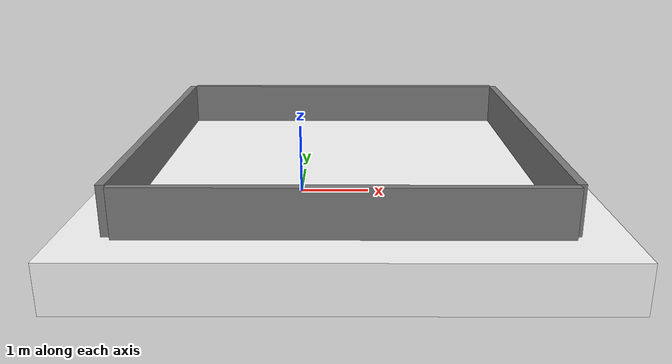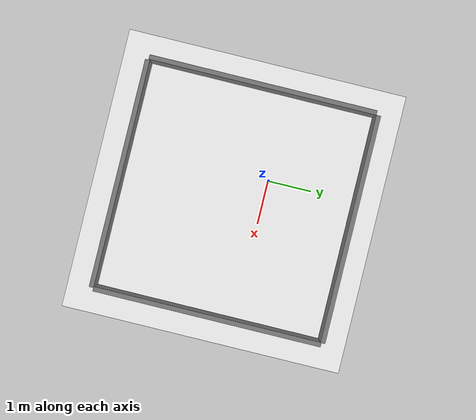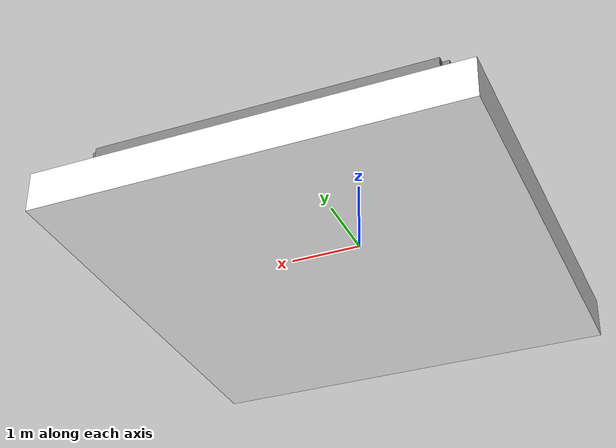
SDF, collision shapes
<?xml version='1.0'?>

<sdf version="1.6">
  <model name="arene">
    <static>true</static>
        <!-- base Link -->
    <link name="base_link">
      <pose>-2.5 2.5 0.0 1.57 0 0</pose>
      <visual name="base_visual">
        <geometry>
          <mesh>
            <uri>model://arene/meshes/arene_base.STL</uri>
            <scale> 0.001 0.001 0.001 </scale>
          </mesh>
        </geometry>
        <material>
          <ambient>0.9 0.9 0.9 1</ambient>
	  <diffuse>1 1 1 1</diffuse>
	  <specular>0.5 0.5 0.5 1</specular>
        </material>
      </visual>
      <collision name="base_collision">
      <pose>3.13 0.3 3.13 1.57 0 0</pose>
        <geometry>
          <box>
            <size>6.25 6.25 0.6</size>
          </box>
        </geometry>
      </collision>
      <inertial>
        <mass>100.0</mass>
        <inertia>
            <ixx>0.0</ixx>
            <ixy>0.0</ixy>
            <ixz>0.0</ixz>
            <iyy>0.0</iyy>
            <iyz>0.0</iyz>
            <izz>0.0</izz>
        </inertia>
      </inertial>
    </link>

    <!-- Frame Left Link -->
    <link name="frame_left_link">
      <pose>-2.38 1.93 0.6 1.57 0 0</pose>
      <visual name="frame_left_visual">
        <pose>0.62 0 0.0 0 0 0</pose>
        <geometry>

          <mesh>
            <uri>model://arene/meshes/arene_frame.STL</uri>
            <scale>0.001 0.001 0.001</scale>
          </mesh>
        </geometry>
        <material>
          <ambient>0.5 0.5 0.5 1</ambient>
          <diffuse>0.5 0.5 0.5 1</diffuse>
          <specular>0.5 0.5 0.5 1</specular>
        </material>
      </visual>
      <collision name="frame_left_collision">
        <pose>3 0.3 0.0 1.57 0 0</pose>
        <geometry>
          <box>
            <size>5 0.1 0.6</size>
          </box>
        </geometry>
      </collision>
      <inertial>
        <mass>25.0</mass>
        <inertia>
          <ixx>0.0</ixx>
          <ixy>0.0</ixy>
          <ixz>0.0</ixz>
          <iyy>0.0</iyy>
          <iyz>0.0</iyz>
          <izz>0.0</izz>
        </inertia>
      </inertial>
    </link>

    <!-- Frame Right Link -->
    <link name="frame_right_link">
      <pose>3.635 -3.15 0.6 1.57 0 3.14</pose>
      <visual name="frame_right_visual">
        <pose>0.63 0 0.0 0 0 0</pose>
        <geometry>
          <mesh>
            <uri>model://arene/meshes/arene_frame.STL</uri>
            <scale>0.001 0.001 0.001</scale>
          </mesh>
        </geometry>
        <material>
          <ambient>0.5 0.5 0.5 1</ambient>
          <diffuse>0.5 0.5 0.5 1</diffuse>
          <specular>0.5 0.5 0.5 1</specular>
        </material>
      </visual>
      <collision name="frame_right_collision">
        <pose>3 0.3 0.0 1.57 0 0</pose>
        <geometry>
          <box>
            <size>5 0.1 0.6</size>
          </box>
        </geometry>
      </collision>
      <inertial>
        <mass>25.0</mass>
        <inertia>
          <ixx>0.0</ixx>
          <ixy>0.0</ixy>
          <ixz>0.0</ixz>
          <iyy>0.0</iyy>
          <iyz>0.0</iyz>
          <izz>0.0</izz>
        </inertia>
      </inertial>
    </link>

    <!-- Frame Front Link -->
    <link name="frame_front_link">
      <pose>-2.59 2.38 0.6 1.57 0 0</pose>
      <visual name="frame_front_visual">
        <pose>0.63 0 0.63 0 0 0</pose>
        <geometry>
          <mesh>
            <uri>model://arene/meshes/arene_frame_with_door.STL</uri>
            <scale>0.001 0.001 0.001</scale>
          </mesh>
        </geometry>
        <material>
          <ambient>0.5 0.5 0.5 1</ambient>
          <diffuse>0.5 0.5 0.5 1</diffuse>
          <specular>0.5 0.5 0.5 1</specular>
        </material>
      </visual>
      <collision name="frame_front_collision">
        <pose>0.66 0.3 3.0 1.57 1.57 0</pose>
        <geometry>
          <box>
            <size>5 0.1 0.6</size>
          </box>
        </geometry>
      </collision>
      <inertial>
        <mass>25.0</mass>
        <inertia>
          <ixx>0.0</ixx>
          <ixy>0.0</ixy>
          <ixz>0.0</ixz>
          <iyy>0.0</iyy>
          <iyz>0.0</iyz>
          <izz>0.0</izz>
        </inertia>
      </inertial>
    </link>

    <!-- Frame Back Link     -->
    <link name="frame_back_link">
      <pose>2.50 2.40 0.6 1.57 0 0</pose>
      <visual name="frame_back_visual">
        <pose>0.63 0 0.63 0 0 0</pose>
        <pose>0.63 0 0.0 0 0 0</pose>
        <geometry>
          <mesh>
            <uri>model://arene/meshes/arene_frame_with_door.STL</uri>
            <scale>0.001 0.001 0.001</scale>
          </mesh>
        </geometry>
        <material>
          <ambient>0.5 0.5 0.5 1</ambient>
          <diffuse>0.5 0.5 0.5 1</diffuse>
          <specular>0.5 0.5 0.5 1</specular>
        </material>
      </visual>
      <collision name="frame_back_collision">
        <pose>0.66 0.3 3.0 1.57 1.57 0</pose>
        <geometry>
          <box>
            <size>5 0.1 0.6</size>
          </box>
        </geometry>
      </collision>
      <inertial>
        <mass>25.0</mass>
        <inertia>
          <ixx>0.0</ixx>
          <ixy>0.0</ixy>
          <ixz>0.0</ixz>
          <iyy>0.0</iyy>
          <iyz>0.0</iyz>
          <izz>0.0</izz>
        </inertia>
      </inertial>
    </link>

  </model>
</sdf>
